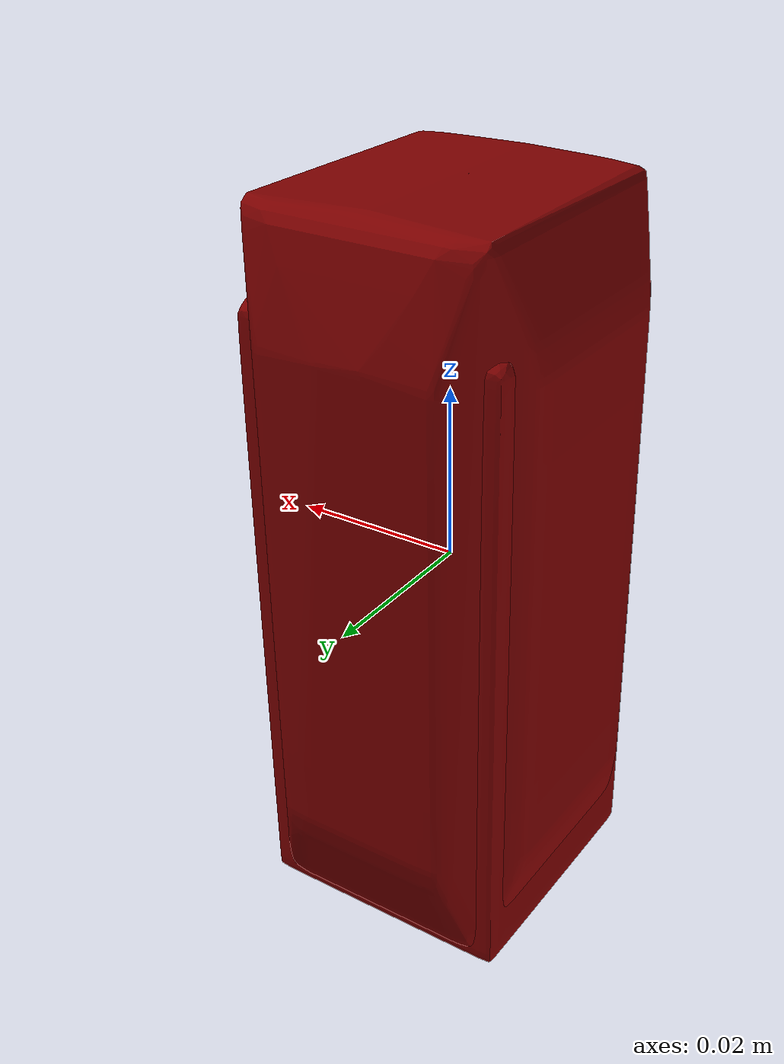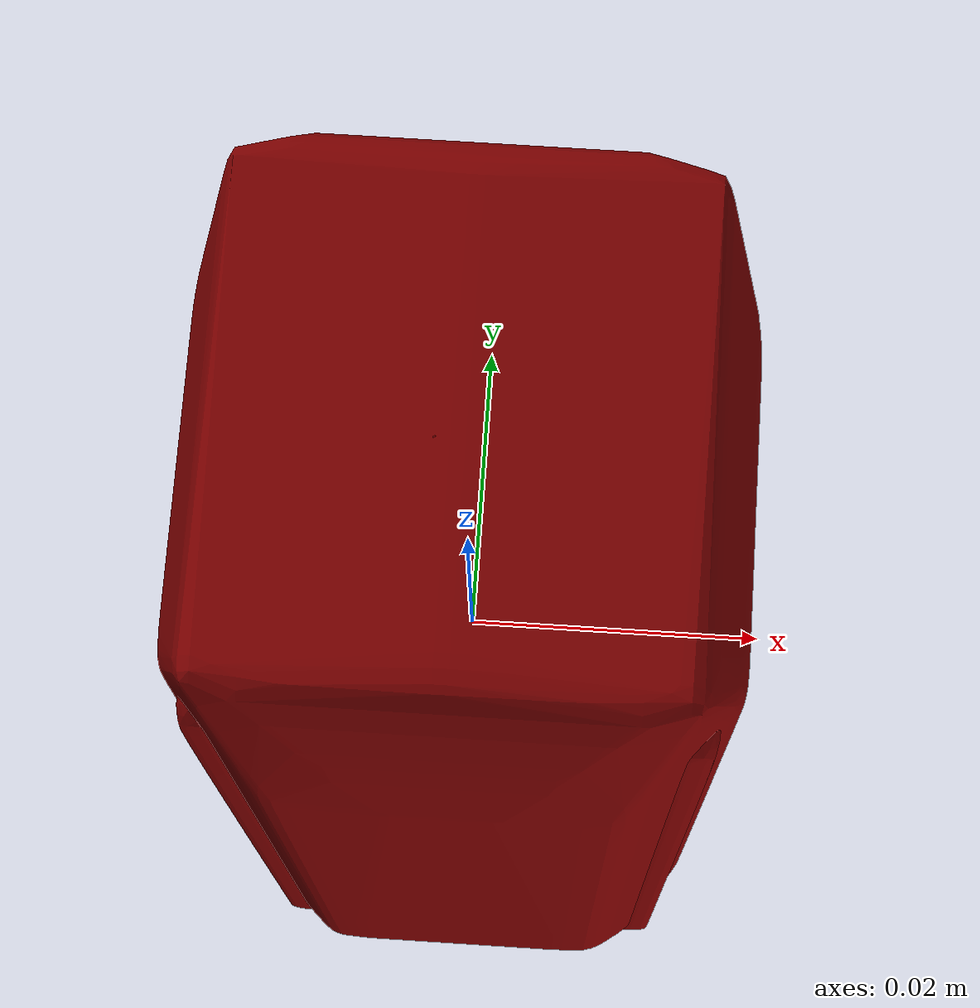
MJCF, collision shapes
<?xml version='1.0' encoding='utf-8'?>
<mujoco model="boxed_drink_5">
  <asset>
    <mesh file="visual/model_normalized_0.obj" name="model_normalized_0_vis" scale="0.08399999999999998 0.08399999999999998 0.08399999999999998" refquat="1.0 0.0 0.0 0.0" />
    <texture type="2d" name="image0" file="visual/image0.png" />
    <material name="lambert1.006" texture="image0" specular="0.5" shininess="0.25" />
    <mesh file="collision/collision_mesh_collision_0.obj" name="boxed_collision_mesh_0" scale="0.08399999999999998 0.08399999999999998 0.08399999999999998" refquat="1.0 0.0 0.0 0.0" />
    <mesh file="collision/collision_mesh_collision_1.obj" name="boxed_collision_mesh_1" scale="0.08399999999999998 0.08399999999999998 0.08399999999999998" refquat="1.0 0.0 0.0 0.0" />
    <mesh file="collision/collision_mesh_collision_2.obj" name="boxed_collision_mesh_2" scale="0.08399999999999998 0.08399999999999998 0.08399999999999998" refquat="1.0 0.0 0.0 0.0" />
    <mesh file="collision/collision_mesh_collision_3.obj" name="boxed_collision_mesh_3" scale="0.08399999999999998 0.08399999999999998 0.08399999999999998" refquat="1.0 0.0 0.0 0.0" />
  </asset>
  <default>
    <default class="region">
      <geom group="1" conaffinity="0" contype="0" rgba="0 1 0 0" mass="0" />
    </default>
    <default class="collision">
      <geom group="0" rgba="0.5 0 0 0.5" density="1871.096424146" />
    </default>
  </default>
  <worldbody>
    <body>
      <body name="object">
        <geom solimp="0.998 0.998 0.001" solref="0.001 1" density="187.109642415" friction="0.95 0.3 0.1" type="mesh" mesh="model_normalized_0_vis" conaffinity="0" contype="0" group="1" material="lambert1.006" />
        <geom class="region" name="reg_bbox" type="box" pos="-3.607799999989502e-07 0.0 -4.7334000000032174e-07" size="0.02610873341999999 0.016774894919999995 0.04245547529999999" />
        <geom mesh="boxed_collision_mesh_0" type="mesh" class="collision" />
        <geom mesh="boxed_collision_mesh_1" type="mesh" class="collision" />
        <geom mesh="boxed_collision_mesh_2" type="mesh" class="collision" />
        <geom mesh="boxed_collision_mesh_3" type="mesh" class="collision" />
      </body>
    </body>
  </worldbody>
</mujoco>
